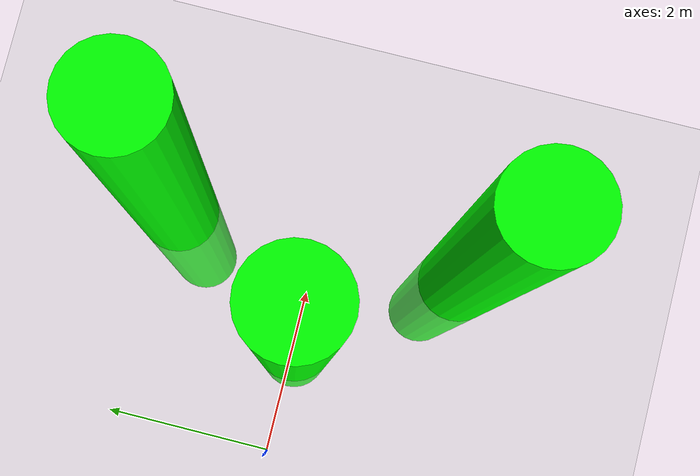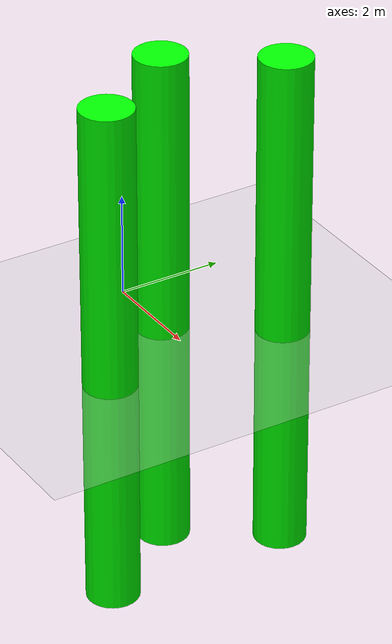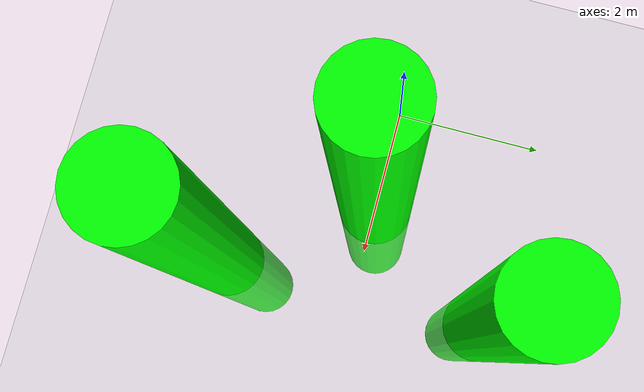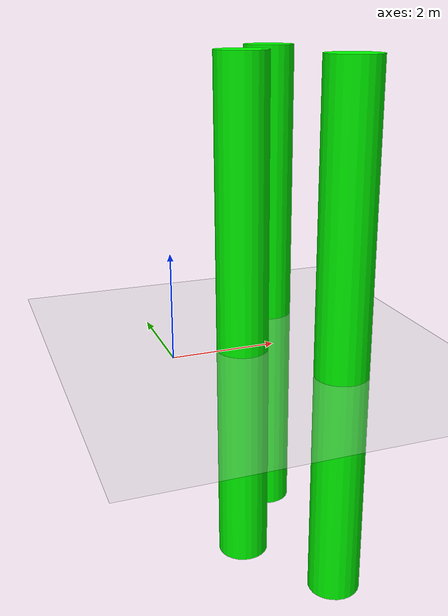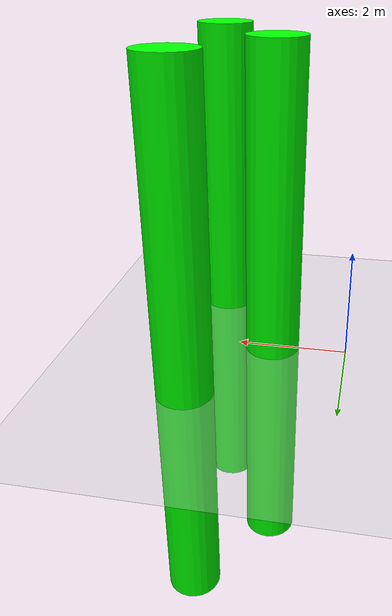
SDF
<?xml version="1.0" ?>
<sdf version="1.7">
    <world name="empty_world">
        <light type="directional" name="sun">
            <cast_shadows>true</cast_shadows>
            <pose>0 0 10 0 0 0</pose>
            <diffuse>0.8 0.8 0.8 1</diffuse>
            <specular>0.2 0.2 0.2 1</specular>
            <attenuation>
                <range>1000</range>
                <constant>0.9</constant>
                <linear>0.01</linear>
                <quadratic>0.001</quadratic>
            </attenuation>
            <direction>-0.5 0.1 -0.9</direction>
        </light>

        <model name="ground_plane">
            <static>true</static>
           <link name="link">
                <collision name="collision">
                    <geometry>
                        <plane>
                            <normal>0 0 1</normal>
                        </plane>
                    </geometry>
                </collision>
                <visual name="visual">
                    <geometry>
                        <plane>
                            <normal>0 0 1</normal>
                            <size>100 100</size>
                        </plane>
                    </geometry>
                    <material>
                        <ambient>0.8 0.8 0.8 1</ambient>
                        <diffuse>0.8 0.8 0.8 1</diffuse>
                        <specular>0.8 0.8 0.8 1</specular>
                    </material>
                </visual>
            </link>
        </model>

    <model name="cylinder1">
      <pose>1.38 0 0.5 0 0 0</pose>
      <link name="cylinder_link">
        <inertial>
          <inertia>
            <ixx>0.1458</ixx>
            <ixy>0</ixy>
            <ixz>0</ixz>
            <iyy>0.1458</iyy>
            <iyz>0</iyz>
            <izz>0.125</izz>
          </inertia>
          <mass>1.0</mass>
        </inertial>
        <collision name="cylinder_collision">
          <geometry>
            <cylinder>
              <radius>0.5</radius>
              <length>10.0</length>
            </cylinder>
          </geometry>
        </collision>

        <visual name="cylinder_visual">
          <geometry>
            <cylinder>
              <radius>0.5</radius>
              <length>10.0</length>
            </cylinder>
          </geometry>
          <material>
            <ambient>0 1 0 1</ambient>
            <diffuse>0 1 0 1</diffuse>
            <specular>0 1 0 1</specular>
          </material>
        </visual>
      </link>
    </model>

    <model name="cylinder2">
      <pose>2.6 1.8 0.5 0 0 0</pose>
      <link name="cylinder_link">
        <inertial>
          <inertia>
            <ixx>0.1458</ixx>
            <ixy>0</ixy>
            <ixz>0</ixz>
            <iyy>0.1458</iyy>
            <iyz>0</iyz>
            <izz>0.125</izz>
          </inertia>
          <mass>1.0</mass>
        </inertial>
        <collision name="cylinder_collision">
          <geometry>
            <cylinder>
              <radius>0.5</radius>
              <length>10.0</length>
            </cylinder>
          </geometry>
        </collision>

        <visual name="cylinder_visual">
          <geometry>
            <cylinder>
              <radius>0.5</radius>
              <length>10.0</length>
            </cylinder>
          </geometry>
          <material>
            <ambient>0 1 0 1</ambient>
            <diffuse>0 1 0 1</diffuse>
            <specular>0 1 0 1</specular>
          </material>
        </visual>
      </link>
    </model>

    <model name="cylinder3">
      <pose>2.6 -1.8 0.5 0 0 0</pose>
      <link name="cylinder_link">
        <inertial>
          <inertia>
            <ixx>0.1458</ixx>
            <ixy>0</ixy>
            <ixz>0</ixz>
            <iyy>0.1458</iyy>
            <iyz>0</iyz>
            <izz>0.125</izz>
          </inertia>
          <mass>1.0</mass>
        </inertial>
        <collision name="cylinder_collision">
          <geometry>
            <cylinder>
              <radius>0.5</radius>
              <length>10.0</length>
            </cylinder>
          </geometry>
        </collision>

        <visual name="cylinder_visual">
          <geometry>
            <cylinder>
              <radius>0.5</radius>
              <length>10.0</length>
            </cylinder>
          </geometry>
          <material>
            <ambient>0 1 0 1</ambient>
            <diffuse>0 1 0 1</diffuse>
            <specular>0 1 0 1</specular>
          </material>
        </visual>
      </link>
    </model>

    </world>
</sdf>
